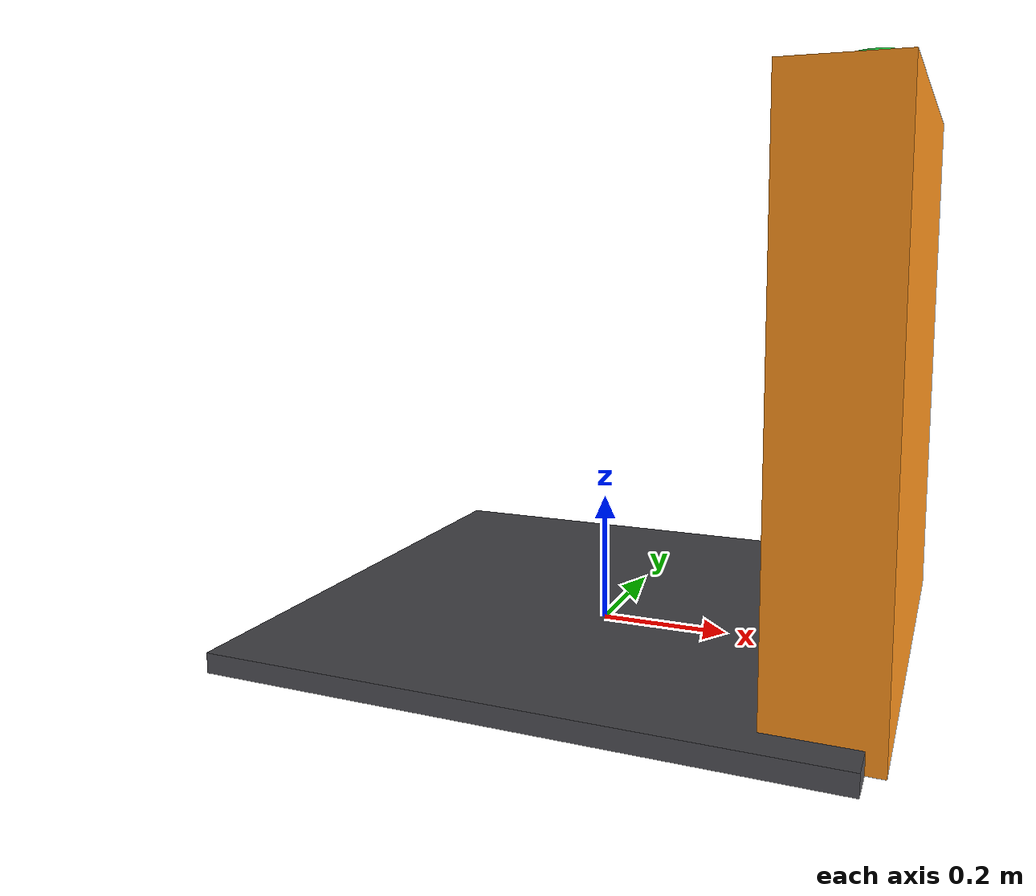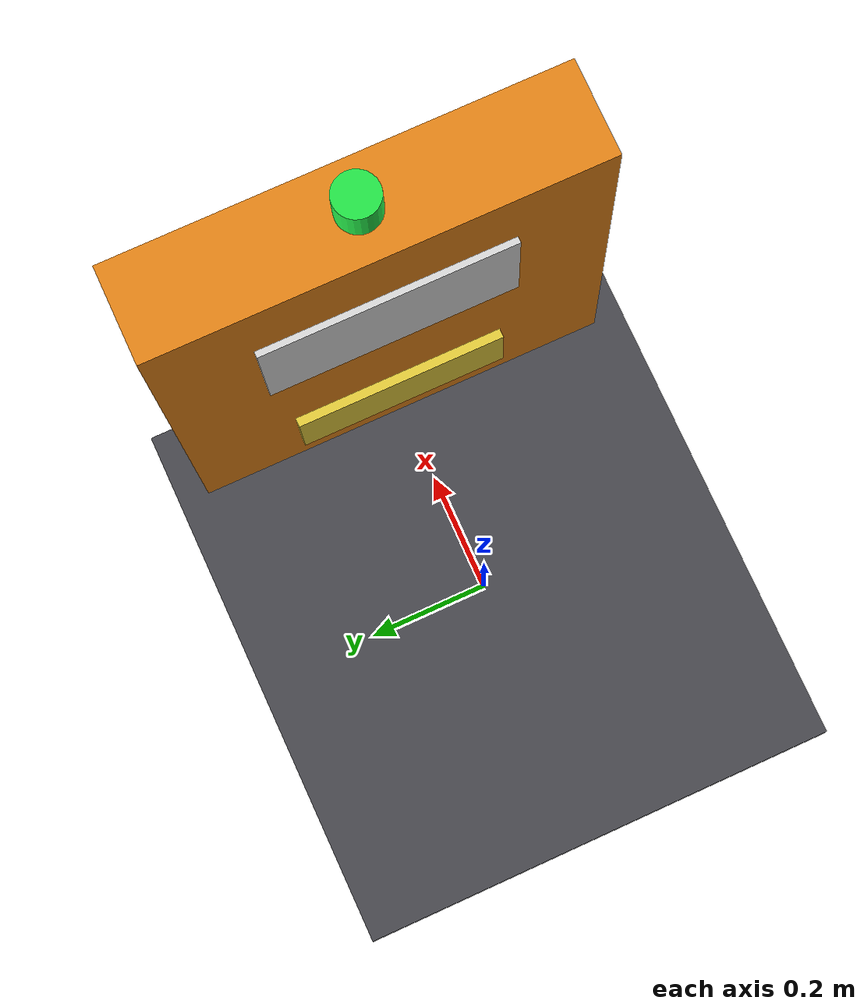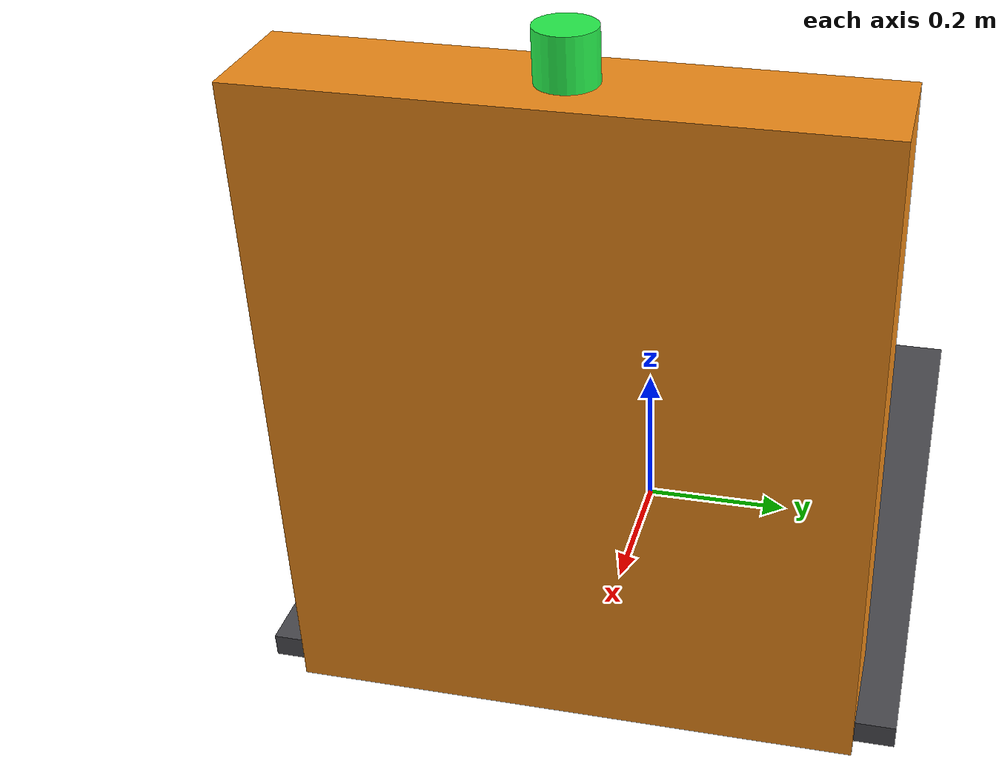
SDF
<?xml version="1.0" ?>
<sdf version="1.6">
  <model name="charging_dock">
    <static>true</static>
    <link name="dock_body">
      <!-- Ground plate base -->
      <visual name="dock_plate">
        <pose>0 0 0.015 0 0 0</pose>
        <geometry><box><size>0.90 0.80 0.03</size></box></geometry>
        <material>
          <ambient>0.20 0.20 0.22 1.0</ambient>
          <diffuse>0.30 0.30 0.32 1.0</diffuse>
        </material>
      </visual>
      <collision name="col_dock_plate">
        <pose>0 0 0.015 0 0 0</pose>
        <geometry><box><size>0.90 0.80 0.03</size></box></geometry>
      </collision>

      <!-- Upright back tower -->
      <visual name="dock_tower">
        <pose>0.40 0 0.40 0 0 0</pose>
        <geometry><box><size>0.15 0.70 0.80</size></box></geometry>
        <material>
          <ambient>0.85 0.45 0.05 1.0</ambient>
          <diffuse>0.95 0.55 0.10 1.0</diffuse>
        </material>
      </visual>
      <collision name="col_dock_tower">
        <pose>0.40 0 0.40 0 0 0</pose>
        <geometry><box><size>0.15 0.70 0.80</size></box></geometry>
      </collision>

      <!-- Charging Contacts / Pad -->
      <visual name="charging_contacts">
        <pose>0.32 0 0.18 0 0 0</pose>
        <geometry><box><size>0.02 0.35 0.12</size></box></geometry>
        <material>
          <ambient>0.80 0.75 0.20 1.0</ambient>
          <diffuse>0.95 0.85 0.25 1.0</diffuse>
        </material>
      </visual>

      <!-- Docking visual target (High contrast chevron for vision sensor) -->
      <visual name="dock_target">
        <pose>0.32 0 0.55 0 0 0</pose>
        <geometry><box><size>0.01 0.40 0.20</size></box></geometry>
        <material>
          <ambient>0.1 0.1 0.1 1.0</ambient>
          <diffuse>0.9 0.9 0.9 1.0</diffuse>
        </material>
      </visual>

      <!-- Status Indicator Light (Green = Available) -->
      <visual name="status_beacon">
        <pose>0.40 0 0.83 0 0 0</pose>
        <geometry><cylinder><radius>0.035</radius><length>0.06</length></cylinder></geometry>
        <material>
          <ambient>0.10 0.85 0.25 1.0</ambient>
          <diffuse>0.15 0.95 0.30 1.0</diffuse>
          <emissive>0.10 0.80 0.20 1.0</emissive>
        </material>
      </visual>
    </link>
  </model>
</sdf>
